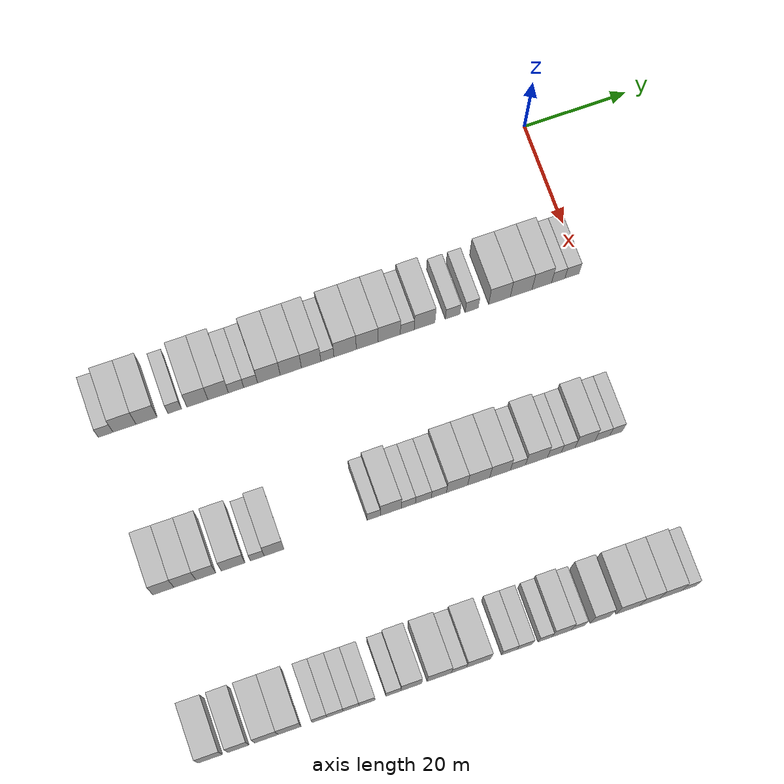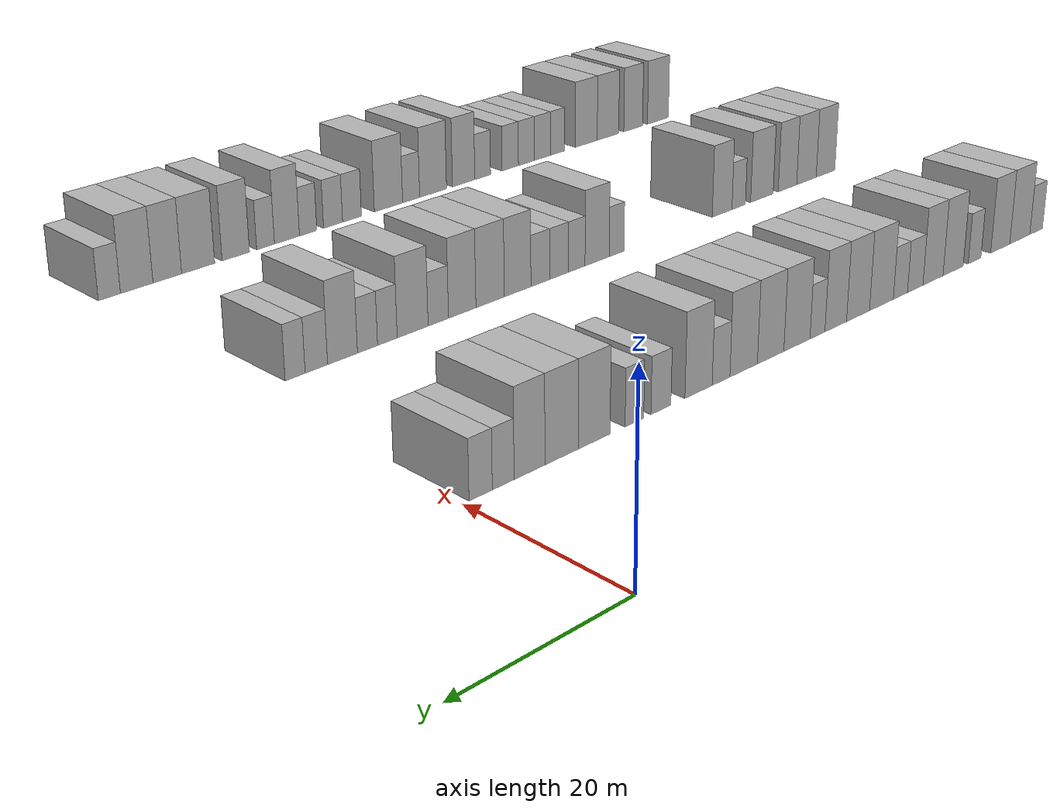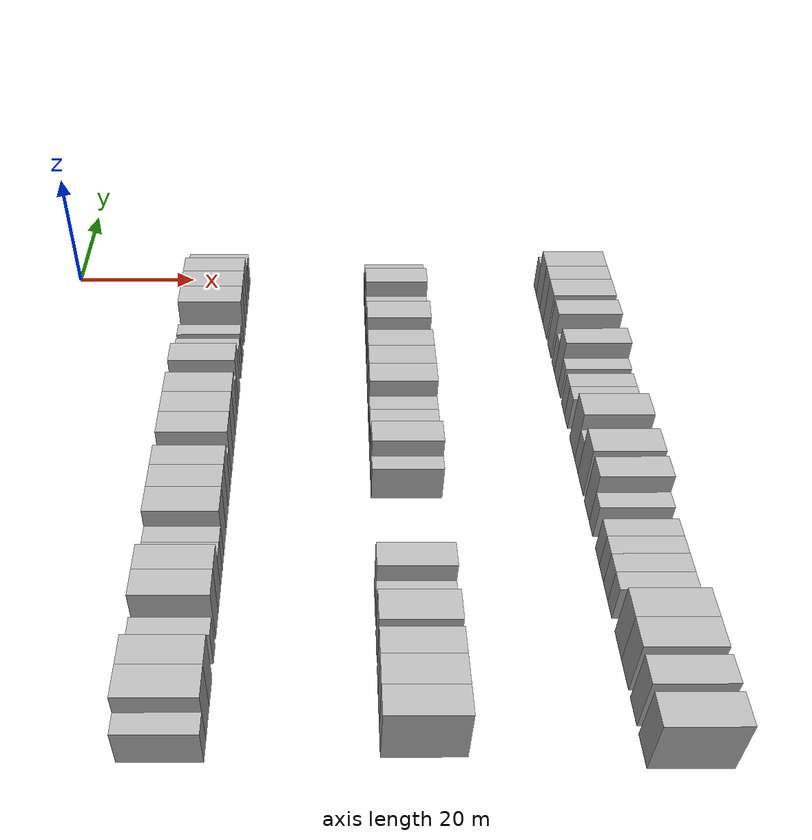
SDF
<sdf version="1.6">
 <world name="default">
  <model name="building_47">
   <static>1</static>
   <pose>25.0000 -90.6563 0 0.000000 0.000000 0.000000</pose>
   <link name="link">
    <pose>0 0 3.00 0 0 0</pose>
    <collision name="collision"><geometry><box><size>10.0000 2.7590 6.0000</size></box></geometry></collision>
    <visual name="visual">
     <cast_shadows>0</cast_shadows>
     <geometry><box><size>10.0000 2.7590 6.0000</size></box></geometry>
     <material>
      <script>
       <uri>model://HANNAS_wall/materials/scripts</uri>
       <uri>model://HANNAS_wall/materials/textures</uri>
       <name>vrc/HANNAS_wall</name>
      </script>
     </material>
    </visual>
   </link>
  </model>
  <model name="building_48">
   <static>1</static>
   <pose>25.0000 -87.1393 0 0.000000 0.000000 0.000000</pose>
   <link name="link">
    <pose>0 0 4.50 0 0 0</pose>
    <collision name="collision"><geometry><box><size>10.0000 4.2750 9.0000</size></box></geometry></collision>
    <visual name="visual">
     <cast_shadows>0</cast_shadows>
     <geometry><box><size>10.0000 4.2750 9.0000</size></box></geometry>
     <material>
      <script>
       <uri>model://HANNAS_wall/materials/scripts</uri>
       <uri>model://HANNAS_wall/materials/textures</uri>
       <name>vrc/HANNAS_wall</name>
      </script>
     </material>
    </visual>
   </link>
  </model>
  <model name="building_49">
   <static>1</static>
   <pose>25.0000 -83.0193 0 0.000000 0.000000 0.000000</pose>
   <link name="link">
    <pose>0 0 4.50 0 0 0</pose>
    <collision name="collision"><geometry><box><size>10.0000 3.9650 9.0000</size></box></geometry></collision>
    <visual name="visual">
     <cast_shadows>0</cast_shadows>
     <geometry><box><size>10.0000 3.9650 9.0000</size></box></geometry>
     <material>
      <script>
       <uri>model://HANNAS_wall/materials/scripts</uri>
       <uri>model://HANNAS_wall/materials/textures</uri>
       <name>vrc/HANNAS_wall</name>
      </script>
     </material>
    </visual>
   </link>
  </model>
  <model name="building_50">
   <static>1</static>
   <pose>25.0000 -77.7585 0 0.000000 0.000000 0.000000</pose>
   <link name="link">
    <pose>0 0 3.00 0 0 0</pose>
    <collision name="collision"><geometry><box><size>10.0000 2.5564 6.0000</size></box></geometry></collision>
    <visual name="visual">
     <cast_shadows>0</cast_shadows>
     <geometry><box><size>10.0000 2.5564 6.0000</size></box></geometry>
     <material>
      <script>
       <uri>model://HANNAS_wall/materials/scripts</uri>
       <uri>model://HANNAS_wall/materials/textures</uri>
       <name>vrc/HANNAS_wall</name>
      </script>
     </material>
    </visual>
   </link>
  </model>
  <model name="building_51">
   <static>1</static>
   <pose>25.0000 -73.5015 0 0.000000 0.000000 0.000000</pose>
   <link name="link">
    <pose>0 0 4.50 0 0 0</pose>
    <collision name="collision"><geometry><box><size>10.0000 3.9576 9.0000</size></box></geometry></collision>
    <visual name="visual">
     <cast_shadows>0</cast_shadows>
     <geometry><box><size>10.0000 3.9576 9.0000</size></box></geometry>
     <material>
      <script>
       <uri>model://HANNAS_wall/materials/scripts</uri>
       <uri>model://HANNAS_wall/materials/textures</uri>
       <name>vrc/HANNAS_wall</name>
      </script>
     </material>
    </visual>
   </link>
  </model>
  <model name="building_52">
   <static>1</static>
   <pose>25.0000 -69.6034 0 0.000000 0.000000 0.000000</pose>
   <link name="link">
    <pose>0 0 4.50 0 0 0</pose>
    <collision name="collision"><geometry><box><size>10.0000 3.8388 9.0000</size></box></geometry></collision>
    <visual name="visual">
     <cast_shadows>0</cast_shadows>
     <geometry><box><size>10.0000 3.8388 9.0000</size></box></geometry>
     <material>
      <script>
       <uri>model://HANNAS_wall/materials/scripts</uri>
       <uri>model://HANNAS_wall/materials/textures</uri>
       <name>vrc/HANNAS_wall</name>
      </script>
     </material>
    </visual>
   </link>
  </model>
  <model name="building_53">
   <static>1</static>
   <pose>25.0000 -66.2385 0 0.000000 0.000000 0.000000</pose>
   <link name="link">
    <pose>0 0 3.00 0 0 0</pose>
    <collision name="collision"><geometry><box><size>10.0000 2.8909 6.0000</size></box></geometry></collision>
    <visual name="visual">
     <cast_shadows>0</cast_shadows>
     <geometry><box><size>10.0000 2.8909 6.0000</size></box></geometry>
     <material>
      <script>
       <uri>model://HANNAS_wall/materials/scripts</uri>
       <uri>model://HANNAS_wall/materials/textures</uri>
       <name>vrc/HANNAS_wall</name>
      </script>
     </material>
    </visual>
   </link>
  </model>
  <model name="building_54">
   <static>1</static>
   <pose>25.0000 -63.4955 0 0.000000 0.000000 0.000000</pose>
   <link name="link">
    <pose>0 0 3.00 0 0 0</pose>
    <collision name="collision"><geometry><box><size>10.0000 2.5952 6.0000</size></box></geometry></collision>
    <visual name="visual">
     <cast_shadows>0</cast_shadows>
     <geometry><box><size>10.0000 2.5952 6.0000</size></box></geometry>
     <material>
      <script>
       <uri>model://HANNAS_wall/materials/scripts</uri>
       <uri>model://HANNAS_wall/materials/textures</uri>
       <name>vrc/HANNAS_wall</name>
      </script>
     </material>
    </visual>
   </link>
  </model>
  <model name="building_55">
   <static>1</static>
   <pose>25.0000 -60.0569 0 0.000000 0.000000 0.000000</pose>
   <link name="link">
    <pose>0 0 4.50 0 0 0</pose>
    <collision name="collision"><geometry><box><size>10.0000 4.2821 9.0000</size></box></geometry></collision>
    <visual name="visual">
     <cast_shadows>0</cast_shadows>
     <geometry><box><size>10.0000 4.2821 9.0000</size></box></geometry>
     <material>
      <script>
       <uri>model://HANNAS_wall/materials/scripts</uri>
       <uri>model://HANNAS_wall/materials/textures</uri>
       <name>vrc/HANNAS_wall</name>
      </script>
     </material>
    </visual>
   </link>
  </model>
  <model name="building_56">
   <static>1</static>
   <pose>25.0000 -55.9119 0 0.000000 0.000000 0.000000</pose>
   <link name="link">
    <pose>0 0 4.50 0 0 0</pose>
    <collision name="collision"><geometry><box><size>10.0000 4.0077 9.0000</size></box></geometry></collision>
    <visual name="visual">
     <cast_shadows>0</cast_shadows>
     <geometry><box><size>10.0000 4.0077 9.0000</size></box></geometry>
     <material>
      <script>
       <uri>model://HANNAS_wall/materials/scripts</uri>
       <uri>model://HANNAS_wall/materials/textures</uri>
       <name>vrc/HANNAS_wall</name>
      </script>
     </material>
    </visual>
   </link>
  </model>
  <model name="building_57">
   <static>1</static>
   <pose>25.0000 -52.0696 0 0.000000 0.000000 0.000000</pose>
   <link name="link">
    <pose>0 0 4.50 0 0 0</pose>
    <collision name="collision"><geometry><box><size>10.0000 3.6770 9.0000</size></box></geometry></collision>
    <visual name="visual">
     <cast_shadows>0</cast_shadows>
     <geometry><box><size>10.0000 3.6770 9.0000</size></box></geometry>
     <material>
      <script>
       <uri>model://HANNAS_wall/materials/scripts</uri>
       <uri>model://HANNAS_wall/materials/textures</uri>
       <name>vrc/HANNAS_wall</name>
      </script>
     </material>
    </visual>
   </link>
  </model>
  <model name="building_58">
   <static>1</static>
   <pose>25.0000 -48.9887 0 0.000000 0.000000 0.000000</pose>
   <link name="link">
    <pose>0 0 3.00 0 0 0</pose>
    <collision name="collision"><geometry><box><size>10.0000 2.4849 6.0000</size></box></geometry></collision>
    <visual name="visual">
     <cast_shadows>0</cast_shadows>
     <geometry><box><size>10.0000 2.4849 6.0000</size></box></geometry>
     <material>
      <script>
       <uri>model://HANNAS_wall/materials/scripts</uri>
       <uri>model://HANNAS_wall/materials/textures</uri>
       <name>vrc/HANNAS_wall</name>
      </script>
     </material>
    </visual>
   </link>
  </model>
  <model name="building_59">
   <static>1</static>
   <pose>25.0000 -45.6196 0 0.000000 0.000000 0.000000</pose>
   <link name="link">
    <pose>0 0 4.50 0 0 0</pose>
    <collision name="collision"><geometry><box><size>10.0000 4.2534 9.0000</size></box></geometry></collision>
    <visual name="visual">
     <cast_shadows>0</cast_shadows>
     <geometry><box><size>10.0000 4.2534 9.0000</size></box></geometry>
     <material>
      <script>
       <uri>model://HANNAS_wall/materials/scripts</uri>
       <uri>model://HANNAS_wall/materials/textures</uri>
       <name>vrc/HANNAS_wall</name>
      </script>
     </material>
    </visual>
   </link>
  </model>
  <model name="building_60">
   <static>1</static>
   <pose>25.0000 -41.4050 0 0.000000 0.000000 0.000000</pose>
   <link name="link">
    <pose>0 0 4.50 0 0 0</pose>
    <collision name="collision"><geometry><box><size>10.0000 4.1756 9.0000</size></box></geometry></collision>
    <visual name="visual">
     <cast_shadows>0</cast_shadows>
     <geometry><box><size>10.0000 4.1756 9.0000</size></box></geometry>
     <material>
      <script>
       <uri>model://HANNAS_wall/materials/scripts</uri>
       <uri>model://HANNAS_wall/materials/textures</uri>
       <name>vrc/HANNAS_wall</name>
      </script>
     </material>
    </visual>
   </link>
  </model>
  <model name="building_61">
   <static>1</static>
   <pose>25.0000 -37.2126 0 0.000000 0.000000 0.000000</pose>
   <link name="link">
    <pose>0 0 4.50 0 0 0</pose>
    <collision name="collision"><geometry><box><size>10.0000 4.2092 9.0000</size></box></geometry></collision>
    <visual name="visual">
     <cast_shadows>0</cast_shadows>
     <geometry><box><size>10.0000 4.2092 9.0000</size></box></geometry>
     <material>
      <script>
       <uri>model://HANNAS_wall/materials/scripts</uri>
       <uri>model://HANNAS_wall/materials/textures</uri>
       <name>vrc/HANNAS_wall</name>
      </script>
     </material>
    </visual>
   </link>
  </model>
  <model name="building_62">
   <static>1</static>
   <pose>25.0000 -33.7831 0 0.000000 0.000000 0.000000</pose>
   <link name="link">
    <pose>0 0 3.00 0 0 0</pose>
    <collision name="collision"><geometry><box><size>10.0000 2.6498 6.0000</size></box></geometry></collision>
    <visual name="visual">
     <cast_shadows>0</cast_shadows>
     <geometry><box><size>10.0000 2.6498 6.0000</size></box></geometry>
     <material>
      <script>
       <uri>model://HANNAS_wall/materials/scripts</uri>
       <uri>model://HANNAS_wall/materials/textures</uri>
       <name>vrc/HANNAS_wall</name>
      </script>
     </material>
    </visual>
   </link>
  </model>
  <model name="building_63">
   <static>1</static>
   <pose>25.0000 -30.4736 0 0.000000 0.000000 0.000000</pose>
   <link name="link">
    <pose>0 0 4.50 0 0 0</pose>
    <collision name="collision"><geometry><box><size>10.0000 3.9692 9.0000</size></box></geometry></collision>
    <visual name="visual">
     <cast_shadows>0</cast_shadows>
     <geometry><box><size>10.0000 3.9692 9.0000</size></box></geometry>
     <material>
      <script>
       <uri>model://HANNAS_wall/materials/scripts</uri>
       <uri>model://HANNAS_wall/materials/textures</uri>
       <name>vrc/HANNAS_wall</name>
      </script>
     </material>
    </visual>
   </link>
  </model>
  <model name="building_64">
   <static>1</static>
   <pose>25.0000 -25.0916 0 0.000000 0.000000 0.000000</pose>
   <link name="link">
    <pose>0 0 3.00 0 0 0</pose>
    <collision name="collision"><geometry><box><size>10.0000 2.7948 6.0000</size></box></geometry></collision>
    <visual name="visual">
     <cast_shadows>0</cast_shadows>
     <geometry><box><size>10.0000 2.7948 6.0000</size></box></geometry>
     <material>
      <script>
       <uri>model://HANNAS_wall/materials/scripts</uri>
       <uri>model://HANNAS_wall/materials/textures</uri>
       <name>vrc/HANNAS_wall</name>
      </script>
     </material>
    </visual>
   </link>
  </model>
  <model name="building_65">
   <static>1</static>
   <pose>25.0000 -21.4293 0 0.000000 0.000000 0.000000</pose>
   <link name="link">
    <pose>0 0 3.00 0 0 0</pose>
    <collision name="collision"><geometry><box><size>10.0000 2.5298 6.0000</size></box></geometry></collision>
    <visual name="visual">
     <cast_shadows>0</cast_shadows>
     <geometry><box><size>10.0000 2.5298 6.0000</size></box></geometry>
     <material>
      <script>
       <uri>model://HANNAS_wall/materials/scripts</uri>
       <uri>model://HANNAS_wall/materials/textures</uri>
       <name>vrc/HANNAS_wall</name>
      </script>
     </material>
    </visual>
   </link>
  </model>
  <model name="building_66">
   <static>1</static>
   <pose>25.0000 -16.0816 0 0.000000 0.000000 0.000000</pose>
   <link name="link">
    <pose>0 0 4.50 0 0 0</pose>
    <collision name="collision"><geometry><box><size>10.0000 4.1657 9.0000</size></box></geometry></collision>
    <visual name="visual">
     <cast_shadows>0</cast_shadows>
     <geometry><box><size>10.0000 4.1657 9.0000</size></box></geometry>
     <material>
      <script>
       <uri>model://HANNAS_wall/materials/scripts</uri>
       <uri>model://HANNAS_wall/materials/textures</uri>
       <name>vrc/HANNAS_wall</name>
      </script>
     </material>
    </visual>
   </link>
  </model>
  <model name="building_67">
   <static>1</static>
   <pose>25.0000 -11.8981 0 0.000000 0.000000 0.000000</pose>
   <link name="link">
    <pose>0 0 4.50 0 0 0</pose>
    <collision name="collision"><geometry><box><size>10.0000 4.2013 9.0000</size></box></geometry></collision>
    <visual name="visual">
     <cast_shadows>0</cast_shadows>
     <geometry><box><size>10.0000 4.2013 9.0000</size></box></geometry>
     <material>
      <script>
       <uri>model://HANNAS_wall/materials/scripts</uri>
       <uri>model://HANNAS_wall/materials/textures</uri>
       <name>vrc/HANNAS_wall</name>
      </script>
     </material>
    </visual>
   </link>
  </model>
  <model name="building_68">
   <static>1</static>
   <pose>25.0000 -7.9124 0 0.000000 0.000000 0.000000</pose>
   <link name="link">
    <pose>0 0 4.50 0 0 0</pose>
    <collision name="collision"><geometry><box><size>10.0000 3.7701 9.0000</size></box></geometry></collision>
    <visual name="visual">
     <cast_shadows>0</cast_shadows>
     <geometry><box><size>10.0000 3.7701 9.0000</size></box></geometry>
     <material>
      <script>
       <uri>model://HANNAS_wall/materials/scripts</uri>
       <uri>model://HANNAS_wall/materials/textures</uri>
       <name>vrc/HANNAS_wall</name>
      </script>
     </material>
    </visual>
   </link>
  </model>
  <model name="building_69">
   <static>1</static>
   <pose>25.0000 -4.7266 0 0.000000 0.000000 0.000000</pose>
   <link name="link">
    <pose>0 0 3.00 0 0 0</pose>
    <collision name="collision"><geometry><box><size>10.0000 2.6015 6.0000</size></box></geometry></collision>
    <visual name="visual">
     <cast_shadows>0</cast_shadows>
     <geometry><box><size>10.0000 2.6015 6.0000</size></box></geometry>
     <material>
      <script>
       <uri>model://HANNAS_wall/materials/scripts</uri>
       <uri>model://HANNAS_wall/materials/textures</uri>
       <name>vrc/HANNAS_wall</name>
      </script>
     </material>
    </visual>
   </link>
  </model>
  <model name="building_70">
   <static>1</static>
   <pose>25.0000 -2.0676 0 0.000000 0.000000 0.000000</pose>
   <link name="link">
    <pose>0 0 3.00 0 0 0</pose>
    <collision name="collision"><geometry><box><size>10.0000 2.7166 6.0000</size></box></geometry></collision>
    <visual name="visual">
     <cast_shadows>0</cast_shadows>
     <geometry><box><size>10.0000 2.7166 6.0000</size></box></geometry>
     <material>
      <script>
       <uri>model://HANNAS_wall/materials/scripts</uri>
       <uri>model://HANNAS_wall/materials/textures</uri>
       <name>vrc/HANNAS_wall</name>
      </script>
     </material>
    </visual>
   </link>
  </model>
  <model name="building_190">
   <static>1</static>
   <pose>55.0000 -89.5209 0 0.000000 0.000000 0.000000</pose>
   <link name="link">
    <pose>0 0 4.50 0 0 0</pose>
    <collision name="collision"><geometry><box><size>10.0000 3.8700 9.0000</size></box></geometry></collision>
    <visual name="visual">
     <cast_shadows>0</cast_shadows>
     <geometry><box><size>10.0000 3.8700 9.0000</size></box></geometry>
     <material>
      <script>
       <uri>model://HANNAS_wall/materials/scripts</uri>
       <uri>model://HANNAS_wall/materials/textures</uri>
       <name>vrc/HANNAS_wall</name>
      </script>
     </material>
    </visual>
   </link>
  </model>
  <model name="building_191">
   <static>1</static>
   <pose>55.0000 -85.5945 0 0.000000 0.000000 0.000000</pose>
   <link name="link">
    <pose>0 0 4.50 0 0 0</pose>
    <collision name="collision"><geometry><box><size>10.0000 3.9829 9.0000</size></box></geometry></collision>
    <visual name="visual">
     <cast_shadows>0</cast_shadows>
     <geometry><box><size>10.0000 3.9829 9.0000</size></box></geometry>
     <material>
      <script>
       <uri>model://HANNAS_wall/materials/scripts</uri>
       <uri>model://HANNAS_wall/materials/textures</uri>
       <name>vrc/HANNAS_wall</name>
      </script>
     </material>
    </visual>
   </link>
  </model>
  <model name="building_192">
   <static>1</static>
   <pose>55.0000 -81.7635 0 0.000000 0.000000 0.000000</pose>
   <link name="link">
    <pose>0 0 4.50 0 0 0</pose>
    <collision name="collision"><geometry><box><size>10.0000 3.6792 9.0000</size></box></geometry></collision>
    <visual name="visual">
     <cast_shadows>0</cast_shadows>
     <geometry><box><size>10.0000 3.6792 9.0000</size></box></geometry>
     <material>
      <script>
       <uri>model://HANNAS_wall/materials/scripts</uri>
       <uri>model://HANNAS_wall/materials/textures</uri>
       <name>vrc/HANNAS_wall</name>
      </script>
     </material>
    </visual>
   </link>
  </model>
  <model name="building_193">
   <static>1</static>
   <pose>55.0000 -76.7431 0 0.000000 0.000000 0.000000</pose>
   <link name="link">
    <pose>0 0 4.50 0 0 0</pose>
    <collision name="collision"><geometry><box><size>10.0000 4.3616 9.0000</size></box></geometry></collision>
    <visual name="visual">
     <cast_shadows>0</cast_shadows>
     <geometry><box><size>10.0000 4.3616 9.0000</size></box></geometry>
     <material>
      <script>
       <uri>model://HANNAS_wall/materials/scripts</uri>
       <uri>model://HANNAS_wall/materials/textures</uri>
       <name>vrc/HANNAS_wall</name>
      </script>
     </material>
    </visual>
   </link>
  </model>
  <model name="building_194">
   <static>1</static>
   <pose>55.0000 -72.2947 0 0.000000 0.000000 0.000000</pose>
   <link name="link">
    <pose>0 0 3.00 0 0 0</pose>
    <collision name="collision"><geometry><box><size>10.0000 2.5351 6.0000</size></box></geometry></collision>
    <visual name="visual">
     <cast_shadows>0</cast_shadows>
     <geometry><box><size>10.0000 2.5351 6.0000</size></box></geometry>
     <material>
      <script>
       <uri>model://HANNAS_wall/materials/scripts</uri>
       <uri>model://HANNAS_wall/materials/textures</uri>
       <name>vrc/HANNAS_wall</name>
      </script>
     </material>
    </visual>
   </link>
  </model>
  <model name="building_195">
   <static>1</static>
   <pose>55.0000 -69.2050 0 0.000000 0.000000 0.000000</pose>
   <link name="link">
    <pose>0 0 4.50 0 0 0</pose>
    <collision name="collision"><geometry><box><size>10.0000 3.6445 9.0000</size></box></geometry></collision>
    <visual name="visual">
     <cast_shadows>0</cast_shadows>
     <geometry><box><size>10.0000 3.6445 9.0000</size></box></geometry>
     <material>
      <script>
       <uri>model://HANNAS_wall/materials/scripts</uri>
       <uri>model://HANNAS_wall/materials/textures</uri>
       <name>vrc/HANNAS_wall</name>
      </script>
     </material>
    </visual>
   </link>
  </model>
  <model name="building_196">
   <static>1</static>
   <pose>55.0000 -50.7200 0 0.000000 0.000000 0.000000</pose>
   <link name="link">
    <pose>0 0 3.00 0 0 0</pose>
    <collision name="collision"><geometry><box><size>10.0000 2.4418 6.0000</size></box></geometry></collision>
    <visual name="visual">
     <cast_shadows>0</cast_shadows>
     <geometry><box><size>10.0000 2.4418 6.0000</size></box></geometry>
     <material>
      <script>
       <uri>model://HANNAS_wall/materials/scripts</uri>
       <uri>model://HANNAS_wall/materials/textures</uri>
       <name>vrc/HANNAS_wall</name>
      </script>
     </material>
    </visual>
   </link>
  </model>
  <model name="building_197">
   <static>1</static>
   <pose>55.0000 -47.5333 0 0.000000 0.000000 0.000000</pose>
   <link name="link">
    <pose>0 0 4.50 0 0 0</pose>
    <collision name="collision"><geometry><box><size>10.0000 3.9316 9.0000</size></box></geometry></collision>
    <visual name="visual">
     <cast_shadows>0</cast_shadows>
     <geometry><box><size>10.0000 3.9316 9.0000</size></box></geometry>
     <material>
      <script>
       <uri>model://HANNAS_wall/materials/scripts</uri>
       <uri>model://HANNAS_wall/materials/textures</uri>
       <name>vrc/HANNAS_wall</name>
      </script>
     </material>
    </visual>
   </link>
  </model>
  <model name="building_198">
   <static>1</static>
   <pose>55.0000 -44.2551 0 0.000000 0.000000 0.000000</pose>
   <link name="link">
    <pose>0 0 3.00 0 0 0</pose>
    <collision name="collision"><geometry><box><size>10.0000 2.6249 6.0000</size></box></geometry></collision>
    <visual name="visual">
     <cast_shadows>0</cast_shadows>
     <geometry><box><size>10.0000 2.6249 6.0000</size></box></geometry>
     <material>
      <script>
       <uri>model://HANNAS_wall/materials/scripts</uri>
       <uri>model://HANNAS_wall/materials/textures</uri>
       <name>vrc/HANNAS_wall</name>
      </script>
     </material>
    </visual>
   </link>
  </model>
  <model name="building_199">
   <static>1</static>
   <pose>55.0000 -41.4651 0 0.000000 0.000000 0.000000</pose>
   <link name="link">
    <pose>0 0 3.00 0 0 0</pose>
    <collision name="collision"><geometry><box><size>10.0000 2.9551 6.0000</size></box></geometry></collision>
    <visual name="visual">
     <cast_shadows>0</cast_shadows>
     <geometry><box><size>10.0000 2.9551 6.0000</size></box></geometry>
     <material>
      <script>
       <uri>model://HANNAS_wall/materials/scripts</uri>
       <uri>model://HANNAS_wall/materials/textures</uri>
       <name>vrc/HANNAS_wall</name>
      </script>
     </material>
    </visual>
   </link>
  </model>
  <model name="building_200">
   <static>1</static>
   <pose>55.0000 -38.5608 0 0.000000 0.000000 0.000000</pose>
   <link name="link">
    <pose>0 0 3.00 0 0 0</pose>
    <collision name="collision"><geometry><box><size>10.0000 2.8535 6.0000</size></box></geometry></collision>
    <visual name="visual">
     <cast_shadows>0</cast_shadows>
     <geometry><box><size>10.0000 2.8535 6.0000</size></box></geometry>
     <material>
      <script>
       <uri>model://HANNAS_wall/materials/scripts</uri>
       <uri>model://HANNAS_wall/materials/textures</uri>
       <name>vrc/HANNAS_wall</name>
      </script>
     </material>
    </visual>
   </link>
  </model>
  <model name="building_201">
   <static>1</static>
   <pose>55.0000 -35.1442 0 0.000000 0.000000 0.000000</pose>
   <link name="link">
    <pose>0 0 4.50 0 0 0</pose>
    <collision name="collision"><geometry><box><size>10.0000 3.9797 9.0000</size></box></geometry></collision>
    <visual name="visual">
     <cast_shadows>0</cast_shadows>
     <geometry><box><size>10.0000 3.9797 9.0000</size></box></geometry>
     <material>
      <script>
       <uri>model://HANNAS_wall/materials/scripts</uri>
       <uri>model://HANNAS_wall/materials/textures</uri>
       <name>vrc/HANNAS_wall</name>
      </script>
     </material>
    </visual>
   </link>
  </model>
  <model name="building_202">
   <static>1</static>
   <pose>55.0000 -31.0805 0 0.000000 0.000000 0.000000</pose>
   <link name="link">
    <pose>0 0 4.50 0 0 0</pose>
    <collision name="collision"><geometry><box><size>10.0000 4.1475 9.0000</size></box></geometry></collision>
    <visual name="visual">
     <cast_shadows>0</cast_shadows>
     <geometry><box><size>10.0000 4.1475 9.0000</size></box></geometry>
     <material>
      <script>
       <uri>model://HANNAS_wall/materials/scripts</uri>
       <uri>model://HANNAS_wall/materials/textures</uri>
       <name>vrc/HANNAS_wall</name>
      </script>
     </material>
    </visual>
   </link>
  </model>
  <model name="building_203">
   <static>1</static>
   <pose>55.0000 -27.0604 0 0.000000 0.000000 0.000000</pose>
   <link name="link">
    <pose>0 0 4.50 0 0 0</pose>
    <collision name="collision"><geometry><box><size>10.0000 3.8928 9.0000</size></box></geometry></collision>
    <visual name="visual">
     <cast_shadows>0</cast_shadows>
     <geometry><box><size>10.0000 3.8928 9.0000</size></box></geometry>
     <material>
      <script>
       <uri>model://HANNAS_wall/materials/scripts</uri>
       <uri>model://HANNAS_wall/materials/textures</uri>
       <name>vrc/HANNAS_wall</name>
      </script>
     </material>
    </visual>
   </link>
  </model>
  <model name="building_204">
   <static>1</static>
   <pose>55.0000 -23.6978 0 0.000000 0.000000 0.000000</pose>
   <link name="link">
    <pose>0 0 3.00 0 0 0</pose>
    <collision name="collision"><geometry><box><size>10.0000 2.8324 6.0000</size></box></geometry></collision>
    <visual name="visual">
     <cast_shadows>0</cast_shadows>
     <geometry><box><size>10.0000 2.8324 6.0000</size></box></geometry>
     <material>
      <script>
       <uri>model://HANNAS_wall/materials/scripts</uri>
       <uri>model://HANNAS_wall/materials/textures</uri>
       <name>vrc/HANNAS_wall</name>
      </script>
     </material>
    </visual>
   </link>
  </model>
  <model name="building_205">
   <static>1</static>
   <pose>55.0000 -20.1866 0 0.000000 0.000000 0.000000</pose>
   <link name="link">
    <pose>0 0 4.50 0 0 0</pose>
    <collision name="collision"><geometry><box><size>10.0000 4.1900 9.0000</size></box></geometry></collision>
    <visual name="visual">
     <cast_shadows>0</cast_shadows>
     <geometry><box><size>10.0000 4.1900 9.0000</size></box></geometry>
     <material>
      <script>
       <uri>model://HANNAS_wall/materials/scripts</uri>
       <uri>model://HANNAS_wall/materials/textures</uri>
       <name>vrc/HANNAS_wall</name>
      </script>
     </material>
    </visual>
   </link>
  </model>
  <model name="building_206">
   <static>1</static>
   <pose>55.0000 -16.7921 0 0.000000 0.000000 0.000000</pose>
   <link name="link">
    <pose>0 0 3.00 0 0 0</pose>
    <collision name="collision"><geometry><box><size>10.0000 2.5991 6.0000</size></box></geometry></collision>
    <visual name="visual">
     <cast_shadows>0</cast_shadows>
     <geometry><box><size>10.0000 2.5991 6.0000</size></box></geometry>
     <material>
      <script>
       <uri>model://HANNAS_wall/materials/scripts</uri>
       <uri>model://HANNAS_wall/materials/textures</uri>
       <name>vrc/HANNAS_wall</name>
      </script>
     </material>
    </visual>
   </link>
  </model>
  <model name="building_207">
   <static>1</static>
   <pose>55.0000 -14.1877 0 0.000000 0.000000 0.000000</pose>
   <link name="link">
    <pose>0 0 3.00 0 0 0</pose>
    <collision name="collision"><geometry><box><size>10.0000 2.6097 6.0000</size></box></geometry></collision>
    <visual name="visual">
     <cast_shadows>0</cast_shadows>
     <geometry><box><size>10.0000 2.6097 6.0000</size></box></geometry>
     <material>
      <script>
       <uri>model://HANNAS_wall/materials/scripts</uri>
       <uri>model://HANNAS_wall/materials/textures</uri>
       <name>vrc/HANNAS_wall</name>
      </script>
     </material>
    </visual>
   </link>
  </model>
  <model name="building_208">
   <static>1</static>
   <pose>55.0000 -10.9860 0 0.000000 0.000000 0.000000</pose>
   <link name="link">
    <pose>0 0 4.50 0 0 0</pose>
    <collision name="collision"><geometry><box><size>10.0000 3.7937 9.0000</size></box></geometry></collision>
    <visual name="visual">
     <cast_shadows>0</cast_shadows>
     <geometry><box><size>10.0000 3.7937 9.0000</size></box></geometry>
     <material>
      <script>
       <uri>model://HANNAS_wall/materials/scripts</uri>
       <uri>model://HANNAS_wall/materials/textures</uri>
       <name>vrc/HANNAS_wall</name>
      </script>
     </material>
    </visual>
   </link>
  </model>
  <model name="building_209">
   <static>1</static>
   <pose>55.0000 -7.6967 0 0.000000 0.000000 0.000000</pose>
   <link name="link">
    <pose>0 0 3.00 0 0 0</pose>
    <collision name="collision"><geometry><box><size>10.0000 2.7849 6.0000</size></box></geometry></collision>
    <visual name="visual">
     <cast_shadows>0</cast_shadows>
     <geometry><box><size>10.0000 2.7849 6.0000</size></box></geometry>
     <material>
      <script>
       <uri>model://HANNAS_wall/materials/scripts</uri>
       <uri>model://HANNAS_wall/materials/textures</uri>
       <name>vrc/HANNAS_wall</name>
      </script>
     </material>
    </visual>
   </link>
  </model>
  <model name="building_210">
   <static>1</static>
   <pose>55.0000 -5.0894 0 0.000000 0.000000 0.000000</pose>
   <link name="link">
    <pose>0 0 3.00 0 0 0</pose>
    <collision name="collision"><geometry><box><size>10.0000 2.4298 6.0000</size></box></geometry></collision>
    <visual name="visual">
     <cast_shadows>0</cast_shadows>
     <geometry><box><size>10.0000 2.4298 6.0000</size></box></geometry>
     <material>
      <script>
       <uri>model://HANNAS_wall/materials/scripts</uri>
       <uri>model://HANNAS_wall/materials/textures</uri>
       <name>vrc/HANNAS_wall</name>
      </script>
     </material>
    </visual>
   </link>
  </model>
  <model name="building_315">
   <static>1</static>
   <pose>85.0000 -90.7479 0 0.000000 0.000000 0.000000</pose>
   <link name="link">
    <pose>0 0 4.50 0 0 0</pose>
    <collision name="collision"><geometry><box><size>10.0000 4.3035 9.0000</size></box></geometry></collision>
    <visual name="visual">
     <cast_shadows>0</cast_shadows>
     <geometry><box><size>10.0000 4.3035 9.0000</size></box></geometry>
     <material>
      <script>
       <uri>model://HANNAS_wall/materials/scripts</uri>
       <uri>model://HANNAS_wall/materials/textures</uri>
       <name>vrc/HANNAS_wall</name>
      </script>
     </material>
    </visual>
   </link>
  </model>
  <model name="building_316">
   <static>1</static>
   <pose>85.0000 -85.7115 0 0.000000 0.000000 0.000000</pose>
   <link name="link">
    <pose>0 0 4.50 0 0 0</pose>
    <collision name="collision"><geometry><box><size>10.0000 3.7693 9.0000</size></box></geometry></collision>
    <visual name="visual">
     <cast_shadows>0</cast_shadows>
     <geometry><box><size>10.0000 3.7693 9.0000</size></box></geometry>
     <material>
      <script>
       <uri>model://HANNAS_wall/materials/scripts</uri>
       <uri>model://HANNAS_wall/materials/textures</uri>
       <name>vrc/HANNAS_wall</name>
      </script>
     </material>
    </visual>
   </link>
  </model>
  <model name="building_317">
   <static>1</static>
   <pose>85.0000 -80.7226 0 0.000000 0.000000 0.000000</pose>
   <link name="link">
    <pose>0 0 4.50 0 0 0</pose>
    <collision name="collision"><geometry><box><size>10.0000 4.2084 9.0000</size></box></geometry></collision>
    <visual name="visual">
     <cast_shadows>0</cast_shadows>
     <geometry><box><size>10.0000 4.2084 9.0000</size></box></geometry>
     <material>
      <script>
       <uri>model://HANNAS_wall/materials/scripts</uri>
       <uri>model://HANNAS_wall/materials/textures</uri>
       <name>vrc/HANNAS_wall</name>
      </script>
     </material>
    </visual>
   </link>
  </model>
  <model name="building_318">
   <static>1</static>
   <pose>85.0000 -76.5260 0 0.000000 0.000000 0.000000</pose>
   <link name="link">
    <pose>0 0 4.50 0 0 0</pose>
    <collision name="collision"><geometry><box><size>10.0000 4.1847 9.0000</size></box></geometry></collision>
    <visual name="visual">
     <cast_shadows>0</cast_shadows>
     <geometry><box><size>10.0000 4.1847 9.0000</size></box></geometry>
     <material>
      <script>
       <uri>model://HANNAS_wall/materials/scripts</uri>
       <uri>model://HANNAS_wall/materials/textures</uri>
       <name>vrc/HANNAS_wall</name>
      </script>
     </material>
    </visual>
   </link>
  </model>
  <model name="building_319">
   <static>1</static>
   <pose>85.0000 -71.0903 0 0.000000 0.000000 0.000000</pose>
   <link name="link">
    <pose>0 0 3.00 0 0 0</pose>
    <collision name="collision"><geometry><box><size>10.0000 2.6868 6.0000</size></box></geometry></collision>
    <visual name="visual">
     <cast_shadows>0</cast_shadows>
     <geometry><box><size>10.0000 2.6868 6.0000</size></box></geometry>
     <material>
      <script>
       <uri>model://HANNAS_wall/materials/scripts</uri>
       <uri>model://HANNAS_wall/materials/textures</uri>
       <name>vrc/HANNAS_wall</name>
      </script>
     </material>
    </visual>
   </link>
  </model>
  <model name="building_320">
   <static>1</static>
   <pose>85.0000 -68.2711 0 0.000000 0.000000 0.000000</pose>
   <link name="link">
    <pose>0 0 3.00 0 0 0</pose>
    <collision name="collision"><geometry><box><size>10.0000 2.9517 6.0000</size></box></geometry></collision>
    <visual name="visual">
     <cast_shadows>0</cast_shadows>
     <geometry><box><size>10.0000 2.9517 6.0000</size></box></geometry>
     <material>
      <script>
       <uri>model://HANNAS_wall/materials/scripts</uri>
       <uri>model://HANNAS_wall/materials/textures</uri>
       <name>vrc/HANNAS_wall</name>
      </script>
     </material>
    </visual>
   </link>
  </model>
  <model name="building_321">
   <static>1</static>
   <pose>85.0000 -65.3722 0 0.000000 0.000000 0.000000</pose>
   <link name="link">
    <pose>0 0 3.00 0 0 0</pose>
    <collision name="collision"><geometry><box><size>10.0000 2.8459 6.0000</size></box></geometry></collision>
    <visual name="visual">
     <cast_shadows>0</cast_shadows>
     <geometry><box><size>10.0000 2.8459 6.0000</size></box></geometry>
     <material>
      <script>
       <uri>model://HANNAS_wall/materials/scripts</uri>
       <uri>model://HANNAS_wall/materials/textures</uri>
       <name>vrc/HANNAS_wall</name>
      </script>
     </material>
    </visual>
   </link>
  </model>
  <model name="building_322">
   <static>1</static>
   <pose>85.0000 -62.4900 0 0.000000 0.000000 0.000000</pose>
   <link name="link">
    <pose>0 0 3.00 0 0 0</pose>
    <collision name="collision"><geometry><box><size>10.0000 2.9186 6.0000</size></box></geometry></collision>
    <visual name="visual">
     <cast_shadows>0</cast_shadows>
     <geometry><box><size>10.0000 2.9186 6.0000</size></box></geometry>
     <material>
      <script>
       <uri>model://HANNAS_wall/materials/scripts</uri>
       <uri>model://HANNAS_wall/materials/textures</uri>
       <name>vrc/HANNAS_wall</name>
      </script>
     </material>
    </visual>
   </link>
  </model>
  <model name="building_323">
   <static>1</static>
   <pose>85.0000 -57.6710 0 0.000000 0.000000 0.000000</pose>
   <link name="link">
    <pose>0 0 3.00 0 0 0</pose>
    <collision name="collision"><geometry><box><size>10.0000 2.7195 6.0000</size></box></geometry></collision>
    <visual name="visual">
     <cast_shadows>0</cast_shadows>
     <geometry><box><size>10.0000 2.7195 6.0000</size></box></geometry>
     <material>
      <script>
       <uri>model://HANNAS_wall/materials/scripts</uri>
       <uri>model://HANNAS_wall/materials/textures</uri>
       <name>vrc/HANNAS_wall</name>
      </script>
     </material>
    </visual>
   </link>
  </model>
  <model name="building_324">
   <static>1</static>
   <pose>85.0000 -54.4182 0 0.000000 0.000000 0.000000</pose>
   <link name="link">
    <pose>0 0 4.50 0 0 0</pose>
    <collision name="collision"><geometry><box><size>10.0000 3.7862 9.0000</size></box></geometry></collision>
    <visual name="visual">
     <cast_shadows>0</cast_shadows>
     <geometry><box><size>10.0000 3.7862 9.0000</size></box></geometry>
     <material>
      <script>
       <uri>model://HANNAS_wall/materials/scripts</uri>
       <uri>model://HANNAS_wall/materials/textures</uri>
       <name>vrc/HANNAS_wall</name>
      </script>
     </material>
    </visual>
   </link>
  </model>
  <model name="building_325">
   <static>1</static>
   <pose>85.0000 -49.3145 0 0.000000 0.000000 0.000000</pose>
   <link name="link">
    <pose>0 0 4.50 0 0 0</pose>
    <collision name="collision"><geometry><box><size>10.0000 4.4211 9.0000</size></box></geometry></collision>
    <visual name="visual">
     <cast_shadows>0</cast_shadows>
     <geometry><box><size>10.0000 4.4211 9.0000</size></box></geometry>
     <material>
      <script>
       <uri>model://HANNAS_wall/materials/scripts</uri>
       <uri>model://HANNAS_wall/materials/textures</uri>
       <name>vrc/HANNAS_wall</name>
      </script>
     </material>
    </visual>
   </link>
  </model>
  <model name="building_326">
   <static>1</static>
   <pose>85.0000 -45.7272 0 0.000000 0.000000 0.000000</pose>
   <link name="link">
    <pose>0 0 3.00 0 0 0</pose>
    <collision name="collision"><geometry><box><size>10.0000 2.7535 6.0000</size></box></geometry></collision>
    <visual name="visual">
     <cast_shadows>0</cast_shadows>
     <geometry><box><size>10.0000 2.7535 6.0000</size></box></geometry>
     <material>
      <script>
       <uri>model://HANNAS_wall/materials/scripts</uri>
       <uri>model://HANNAS_wall/materials/textures</uri>
       <name>vrc/HANNAS_wall</name>
      </script>
     </material>
    </visual>
   </link>
  </model>
  <model name="building_327">
   <static>1</static>
   <pose>85.0000 -42.1176 0 0.000000 0.000000 0.000000</pose>
   <link name="link">
    <pose>0 0 4.50 0 0 0</pose>
    <collision name="collision"><geometry><box><size>10.0000 4.4658 9.0000</size></box></geometry></collision>
    <visual name="visual">
     <cast_shadows>0</cast_shadows>
     <geometry><box><size>10.0000 4.4658 9.0000</size></box></geometry>
     <material>
      <script>
       <uri>model://HANNAS_wall/materials/scripts</uri>
       <uri>model://HANNAS_wall/materials/textures</uri>
       <name>vrc/HANNAS_wall</name>
      </script>
     </material>
    </visual>
   </link>
  </model>
  <model name="building_328">
   <static>1</static>
   <pose>85.0000 -36.4419 0 0.000000 0.000000 0.000000</pose>
   <link name="link">
    <pose>0 0 3.00 0 0 0</pose>
    <collision name="collision"><geometry><box><size>10.0000 2.8857 6.0000</size></box></geometry></collision>
    <visual name="visual">
     <cast_shadows>0</cast_shadows>
     <geometry><box><size>10.0000 2.8857 6.0000</size></box></geometry>
     <material>
      <script>
       <uri>model://HANNAS_wall/materials/scripts</uri>
       <uri>model://HANNAS_wall/materials/textures</uri>
       <name>vrc/HANNAS_wall</name>
      </script>
     </material>
    </visual>
   </link>
  </model>
  <model name="building_329">
   <static>1</static>
   <pose>85.0000 -33.5703 0 0.000000 0.000000 0.000000</pose>
   <link name="link">
    <pose>0 0 3.00 0 0 0</pose>
    <collision name="collision"><geometry><box><size>10.0000 2.8575 6.0000</size></box></geometry></collision>
    <visual name="visual">
     <cast_shadows>0</cast_shadows>
     <geometry><box><size>10.0000 2.8575 6.0000</size></box></geometry>
     <material>
      <script>
       <uri>model://HANNAS_wall/materials/scripts</uri>
       <uri>model://HANNAS_wall/materials/textures</uri>
       <name>vrc/HANNAS_wall</name>
      </script>
     </material>
    </visual>
   </link>
  </model>
  <model name="building_330">
   <static>1</static>
   <pose>85.0000 -29.8682 0 0.000000 0.000000 0.000000</pose>
   <link name="link">
    <pose>0 0 3.00 0 0 0</pose>
    <collision name="collision"><geometry><box><size>10.0000 2.5467 6.0000</size></box></geometry></collision>
    <visual name="visual">
     <cast_shadows>0</cast_shadows>
     <geometry><box><size>10.0000 2.5467 6.0000</size></box></geometry>
     <material>
      <script>
       <uri>model://HANNAS_wall/materials/scripts</uri>
       <uri>model://HANNAS_wall/materials/textures</uri>
       <name>vrc/HANNAS_wall</name>
      </script>
     </material>
    </visual>
   </link>
  </model>
  <model name="building_331">
   <static>1</static>
   <pose>85.0000 -26.7923 0 0.000000 0.000000 0.000000</pose>
   <link name="link">
    <pose>0 0 4.50 0 0 0</pose>
    <collision name="collision"><geometry><box><size>10.0000 3.6050 9.0000</size></box></geometry></collision>
    <visual name="visual">
     <cast_shadows>0</cast_shadows>
     <geometry><box><size>10.0000 3.6050 9.0000</size></box></geometry>
     <material>
      <script>
       <uri>model://HANNAS_wall/materials/scripts</uri>
       <uri>model://HANNAS_wall/materials/textures</uri>
       <name>vrc/HANNAS_wall</name>
      </script>
     </material>
    </visual>
   </link>
  </model>
  <model name="building_332">
   <static>1</static>
   <pose>85.0000 -23.7306 0 0.000000 0.000000 0.000000</pose>
   <link name="link">
    <pose>0 0 3.00 0 0 0</pose>
    <collision name="collision"><geometry><box><size>10.0000 2.5185 6.0000</size></box></geometry></collision>
    <visual name="visual">
     <cast_shadows>0</cast_shadows>
     <geometry><box><size>10.0000 2.5185 6.0000</size></box></geometry>
     <material>
      <script>
       <uri>model://HANNAS_wall/materials/scripts</uri>
       <uri>model://HANNAS_wall/materials/textures</uri>
       <name>vrc/HANNAS_wall</name>
      </script>
     </material>
    </visual>
   </link>
  </model>
  <model name="building_333">
   <static>1</static>
   <pose>85.0000 -19.5800 0 0.000000 0.000000 0.000000</pose>
   <link name="link">
    <pose>0 0 4.50 0 0 0</pose>
    <collision name="collision"><geometry><box><size>10.0000 3.7826 9.0000</size></box></geometry></collision>
    <visual name="visual">
     <cast_shadows>0</cast_shadows>
     <geometry><box><size>10.0000 3.7826 9.0000</size></box></geometry>
     <material>
      <script>
       <uri>model://HANNAS_wall/materials/scripts</uri>
       <uri>model://HANNAS_wall/materials/textures</uri>
       <name>vrc/HANNAS_wall</name>
      </script>
     </material>
    </visual>
   </link>
  </model>
  <model name="building_334">
   <static>1</static>
   <pose>85.0000 -14.4844 0 0.000000 0.000000 0.000000</pose>
   <link name="link">
    <pose>0 0 4.50 0 0 0</pose>
    <collision name="collision"><geometry><box><size>10.0000 4.4085 9.0000</size></box></geometry></collision>
    <visual name="visual">
     <cast_shadows>0</cast_shadows>
     <geometry><box><size>10.0000 4.4085 9.0000</size></box></geometry>
     <material>
      <script>
       <uri>model://HANNAS_wall/materials/scripts</uri>
       <uri>model://HANNAS_wall/materials/textures</uri>
       <name>vrc/HANNAS_wall</name>
      </script>
     </material>
    </visual>
   </link>
  </model>
  <model name="building_335">
   <static>1</static>
   <pose>85.0000 -10.4140 0 0.000000 0.000000 0.000000</pose>
   <link name="link">
    <pose>0 0 4.50 0 0 0</pose>
    <collision name="collision"><geometry><box><size>10.0000 3.7323 9.0000</size></box></geometry></collision>
    <visual name="visual">
     <cast_shadows>0</cast_shadows>
     <geometry><box><size>10.0000 3.7323 9.0000</size></box></geometry>
     <material>
      <script>
       <uri>model://HANNAS_wall/materials/scripts</uri>
       <uri>model://HANNAS_wall/materials/textures</uri>
       <name>vrc/HANNAS_wall</name>
      </script>
     </material>
    </visual>
   </link>
  </model>
  <model name="building_336">
   <static>1</static>
   <pose>85.0000 -6.4871 0 0.000000 0.000000 0.000000</pose>
   <link name="link">
    <pose>0 0 4.50 0 0 0</pose>
    <collision name="collision"><geometry><box><size>10.0000 4.1214 9.0000</size></box></geometry></collision>
    <visual name="visual">
     <cast_shadows>0</cast_shadows>
     <geometry><box><size>10.0000 4.1214 9.0000</size></box></geometry>
     <material>
      <script>
       <uri>model://HANNAS_wall/materials/scripts</uri>
       <uri>model://HANNAS_wall/materials/textures</uri>
       <name>vrc/HANNAS_wall</name>
      </script>
     </material>
    </visual>
   </link>
  </model>
  <model name="building_337">
   <static>1</static>
   <pose>85.0000 -3.0530 0 0.000000 0.000000 0.000000</pose>
   <link name="link">
    <pose>0 0 3.00 0 0 0</pose>
    <collision name="collision"><geometry><box><size>10.0000 2.7469 6.0000</size></box></geometry></collision>
    <visual name="visual">
     <cast_shadows>0</cast_shadows>
     <geometry><box><size>10.0000 2.7469 6.0000</size></box></geometry>
     <material>
      <script>
       <uri>model://HANNAS_wall/materials/scripts</uri>
       <uri>model://HANNAS_wall/materials/textures</uri>
       <name>vrc/HANNAS_wall</name>
      </script>
     </material>
    </visual>
   </link>
  </model>
 </world>
</sdf>
